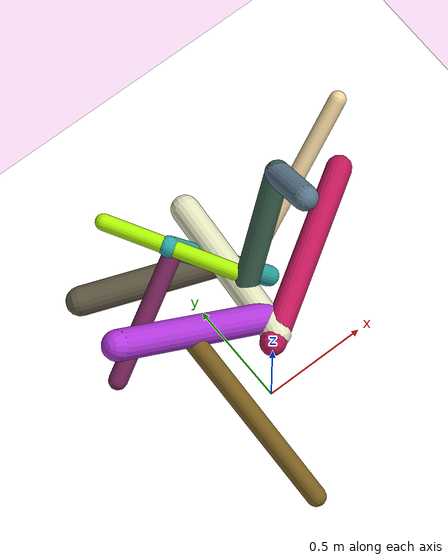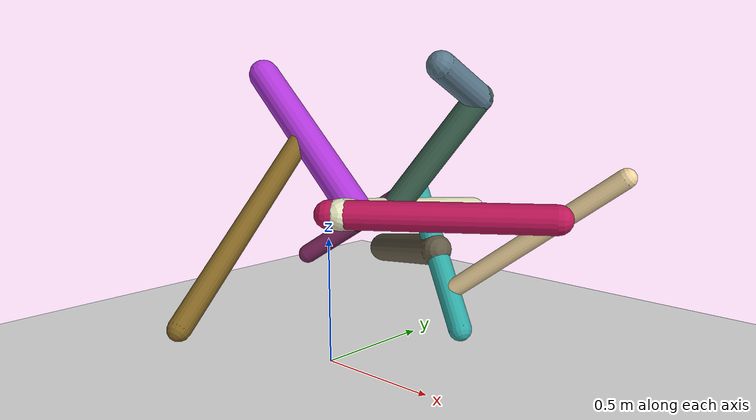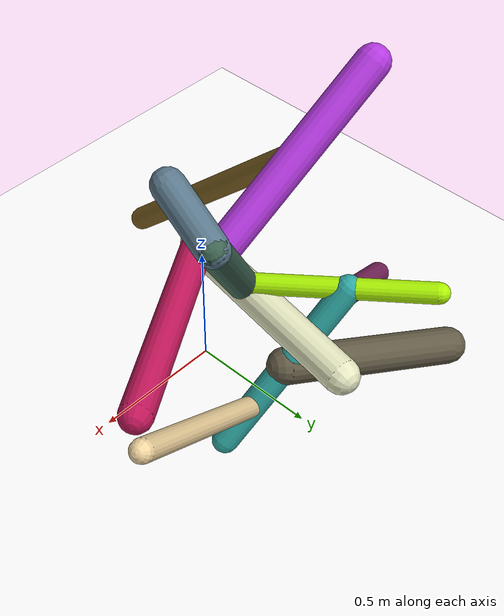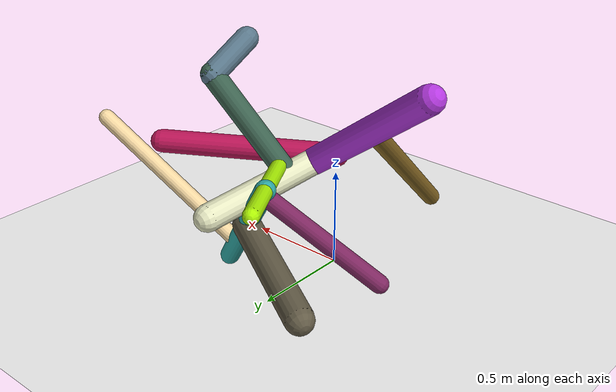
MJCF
<mujoco model="morphology">
  <option timestep="0.01"/>
  <default>
    <default class="/"/>
    <default class="0/"/>
    <default class="0/1/"/>
    <default class="0/1/2/"/>
    <default class="0/1/2/3/"/>
    <default class="0/1/2/4/"/>
    <default class="0/1/2/4/5/"/>
    <default class="0/1/2/4/5/6/"/>
    <default class="0/1/2/4/5/7/"/>
    <default class="0/1/2/4/5/8/"/>
    <default class="0/1/9/"/>
    <default class="0/1/9/10/"/>
  </default>
  <asset>
    <texture name="texplane" type="2d" builtin="checker" rgb1="0.10000000000000001 0.20000000000000001 0.29999999999999999" rgb2="0.20000000000000001 0.29999999999999999 0.40000000000000002" width="300" height="300"/>
    <material name="MatPlane" class="/" texture="texplane" texrepeat="20 20" specular="1" shininess="1" reflectance="0.5"/>
  </asset>
  <worldbody>
    <light name="//unnamed_light_0" class="/" directional="true" pos="0 0 1.5" dir="0 0 -1.3" cutoff="100" exponent="1" diffuse="1 1 1" specular="0.10000000000000001 0.10000000000000001 0.10000000000000001"/>
    <geom name="ground" class="/" type="plane" size="15 15 0.5" material="MatPlane" rgba="1 1 1 1"/>
    <site name="body" class="/" size="9.9999999999999995e-07 9.9999999999999995e-07 9.9999999999999995e-07" pos="0 0 0.59658963084220884"/>
    <body pos="0 0 0.59658963084220884" name="0/">
      <freejoint name="0/"/>
      <geom name="0/geom" class="0/" type="capsule" contype="1" conaffinity="1" condim="3" size="0.058182297204527091" rgba="0.75068122977832163 0.085004339676600371 0.35008055328423993 1" friction="0.59999999999999998 0.10000000000000001 0.10000000000000001" fromto="0 0 0 0.73813103280961156 0.46295631542932991 0.010705023125818558"/>
      <site name="0/end0" class="0/" size="0.0050000000000000001" pos="0.73813103280961156 0.46295631542932991 0.010705023125818558"/>
      <site name="0/attach1" class="0/" size="9.9999999999999995e-07 9.9999999999999995e-07 9.9999999999999995e-07" pos="0.038713006733226793 0.024280825706766221 0.00056144995119864578"/>
      <body pos="0.038713006733226793 0.024280825706766221 0.00056144995119864578" name="0/1/">
        <joint name="0/1/joint/" class="0/" type="hinge" axis="0 1 0" limited="true" range="-47.375339932279793 47.375339932279793"/>
        <geom name="0/1/geom" class="0/1/" type="capsule" contype="1" conaffinity="1" condim="3" size="0.064078236780183984" rgba="0.89514414117148688 0.90355292339703286 0.75397004638326637 1" friction="0.59999999999999998 0.10000000000000001 0.10000000000000001" fromto="0 0 0 0.074839547727191147 0.733202792200772 -0.079982275386592638"/>
        <site name="0/1/end1" class="0/1/" size="0.0050000000000000001" pos="0.074839547727191147 0.733202792200772 -0.079982275386592638"/>
        <site name="0/1/attach2" class="0/1/" size="9.9999999999999995e-07 9.9999999999999995e-07 9.9999999999999995e-07" pos="0.0258041788107711 0.25280345123773845 -0.027577357138652413"/>
        <body pos="0.0258041788107711 0.25280345123773845 -0.027577357138652413" name="0/1/2/">
          <joint name="0/1/2/joint/" class="0/1/" type="hinge" axis="-6.9388939039072284e-18 0.10844284231514015 0.99410268581802641" limited="true" range="-53.951614861478134 53.951614861478134"/>
          <geom name="0/1/2/geom" class="0/1/2/" type="capsule" contype="1" conaffinity="1" condim="3" size="0.054621113394557094" rgba="0.24256582437907703 0.39522766856129465 0.32018933850388809 1" friction="0.59999999999999998 0.10000000000000001 0.10000000000000001" fromto="0 0 0 0.3123591641568062 0.17173194294457006 0.47266865602109287"/>
          <site name="0/1/2/end2" class="0/1/2/" size="0.0050000000000000001" pos="0.3123591641568062 0.17173194294457006 0.47266865602109287"/>
          <site name="0/1/2/attach3" class="0/1/2/" size="9.9999999999999995e-07 9.9999999999999995e-07 9.9999999999999995e-07" pos="0.31028531835911438 0.17059176327618594 0.46953046761981426"/>
          <body pos="0.31028531835911438 0.17059176327618594 0.46953046761981426" name="0/1/2/3/">
            <geom name="0/1/2/3/geom" class="0/1/2/3/" type="capsule" contype="1" conaffinity="1" condim="3" size="0.056708418764960924" rgba="0.35276027307176461 0.46890046608693903 0.54320803169209231 1" friction="0.59999999999999998 0.10000000000000001 0.10000000000000001" fromto="0 0 0 -0.018735288294811747 -0.2060568968701928 0.12495999301852323"/>
            <site name="0/1/2/3/end3" class="0/1/2/3/" size="0.0050000000000000001" pos="-0.018735288294811747 -0.2060568968701928 0.12495999301852323"/>
          </body>
          <site name="0/1/2/attach4" class="0/1/2/" size="9.9999999999999995e-07 9.9999999999999995e-07 9.9999999999999995e-07" pos="0.035654218505205108 0.019602332573137989 0.053952736068526408"/>
          <body pos="0.035654218505205108 0.019602332573137989 0.053952736068526408" name="0/1/2/4/">
            <geom name="0/1/2/4/geom" class="0/1/2/4/" type="capsule" contype="1" conaffinity="1" condim="3" size="0.037630370401179003" rgba="0.67839258346457421 0.95852397232677111 0.015169022560943768 1" friction="0.59999999999999998 0.10000000000000001 0.10000000000000001" fromto="0 0 0 -0.3496331701250015 0.5591519182247886 0.076249748635715209"/>
            <site name="0/1/2/4/end4" class="0/1/2/4/" size="0.0050000000000000001" pos="-0.3496331701250015 0.5591519182247886 0.076249748635715209"/>
            <site name="0/1/2/4/attach5" class="0/1/2/4/" size="9.9999999999999995e-07 9.9999999999999995e-07 9.9999999999999995e-07" pos="-0.19184429495597705 0.30680757631424188 0.041838362368076802"/>
            <body pos="-0.19184429495597705 0.30680757631424188 0.041838362368076802" name="0/1/2/4/5/">
              <geom name="0/1/2/4/5/geom" class="0/1/2/4/5/" type="capsule" contype="1" conaffinity="1" condim="3" size="0.048075694331462006" rgba="0.18215123892844487 0.65730795003474041 0.64123595357521546 1" friction="0.59999999999999998 0.10000000000000001 0.10000000000000001" fromto="0 0 0 0.41235913437749372 -0.1792419898011588 -0.5653648352629348"/>
              <site name="0/1/2/4/5/end5" class="0/1/2/4/5/" size="0.0050000000000000001" pos="0.41235913437749372 -0.1792419898011588 -0.5653648352629348"/>
              <site name="0/1/2/4/5/attach6" class="0/1/2/4/5/" size="9.9999999999999995e-07 9.9999999999999995e-07 9.9999999999999995e-07" pos="0.3160857347282745 -0.13739440045625773 -0.43336922707772602"/>
              <body pos="0.3160857347282745 -0.13739440045625773 -0.43336922707772602" name="0/1/2/4/5/6/">
                <geom name="0/1/2/4/5/6/geom" class="0/1/2/4/5/6/" type="capsule" contype="1" conaffinity="1" condim="3" size="0.039010963967621673" rgba="0.94497922604097184 0.83555926065302544 0.62536181979920924 1" friction="0.59999999999999998 0.10000000000000001 0.10000000000000001" fromto="0 0 0 0.6692972745732666 0.20550666168559628 0.52280192436474238"/>
                <site name="0/1/2/4/5/6/end6" class="0/1/2/4/5/6/" size="0.0050000000000000001" pos="0.6692972745732666 0.20550666168559628 0.52280192436474238"/>
              </body>
              <site name="0/1/2/4/5/attach7" class="0/1/2/4/5/" size="9.9999999999999995e-07 9.9999999999999995e-07 9.9999999999999995e-07" pos="0.20445072917602394 -0.088869513146908191 -0.28031209492784903"/>
              <body pos="0.20445072917602394 -0.088869513146908191 -0.28031209492784903" name="0/1/2/4/5/7/">
                <geom name="0/1/2/4/5/7/geom" class="0/1/2/4/5/7/" type="capsule" contype="1" conaffinity="1" condim="3" size="0.067012954515899698" rgba="0.38444019896578474 0.35390571888794331 0.27362726570980522 1" friction="0.59999999999999998 0.10000000000000001 0.10000000000000001" fromto="0 0 0 -0.56482048569015464 0.27451003774246674 -0.12783457898819439"/>
                <site name="0/1/2/4/5/7/end7" class="0/1/2/4/5/7/" size="0.0050000000000000001" pos="-0.56482048569015464 0.27451003774246674 -0.12783457898819439"/>
              </body>
              <site name="0/1/2/4/5/attach8" class="0/1/2/4/5/" size="9.9999999999999995e-07 9.9999999999999995e-07 9.9999999999999995e-07" pos="0.023642803462980921 -0.010276923157237387 -0.032415456747868526"/>
              <body pos="0.023642803462980921 -0.010276923157237387 -0.032415456747868526" name="0/1/2/4/5/8/">
                <joint name="0/1/2/4/5/8/joint/" class="0/1/2/4/5/" type="hinge" axis="0.82105488479531052 0.17251816526731517 0.54415655725770551" limited="true" range="-40.674287698406893 40.674287698406893"/>
                <geom name="0/1/2/4/5/8/geom" class="0/1/2/4/5/8/" type="capsule" contype="1" conaffinity="1" condim="3" size="0.042842004922831599" rgba="0.48902390733157952 0.15116044764607017 0.37412789667100521 1" friction="0.59999999999999998 0.10000000000000001 0.10000000000000001" fromto="0 0 0 -0.48793239095797236 -0.2143758267652438 -0.35271057877167478"/>
                <site name="0/1/2/4/5/8/end8" class="0/1/2/4/5/8/" size="0.0050000000000000001" pos="-0.48793239095797236 -0.2143758267652438 -0.35271057877167478"/>
              </body>
            </body>
          </body>
        </body>
        <site name="0/1/attach9" class="0/1/" size="9.9999999999999995e-07 9.9999999999999995e-07 9.9999999999999995e-07" pos="0.0091860865335960436 0.089996058238917362 -0.009817324197807847"/>
        <body pos="0.0091860865335960436 0.089996058238917362 -0.009817324197807847" name="0/1/9/">
          <joint name="0/1/9/joint/" class="0/1/" type="hinge" axis="-0.99489132086880649 0.10035642467977035 -0.010947496764787679" limited="true" range="-38.955895228171933 38.955895228171933"/>
          <geom name="0/1/9/geom" class="0/1/9/" type="capsule" contype="1" conaffinity="1" condim="3" size="0.066573640371495296" rgba="0.70741156265407401 0.22138584068486522 0.87801754873223203 1" friction="0.59999999999999998 0.10000000000000001 0.10000000000000001" fromto="0 0 0 -0.68979917134112423 0.1012505220715787 0.52595501014266999"/>
          <site name="0/1/9/end9" class="0/1/9/" size="0.0050000000000000001" pos="-0.68979917134112423 0.1012505220715787 0.52595501014266999"/>
          <site name="0/1/9/attach10" class="0/1/9/" size="9.9999999999999995e-07 9.9999999999999995e-07 9.9999999999999995e-07" pos="-0.3743506085939477 0.054948159018889678 0.28543319029673969"/>
          <body pos="-0.3743506085939477 0.054948159018889678 0.28543319029673969" name="0/1/9/10/">
            <joint name="0/1/9/10/joint/" class="0/1/9/" type="hinge" axis="-5.5511151231257827e-17 -0.98196996016116611 0.18903702637599268" limited="true" range="-41.659424739311895 41.659424739311895"/>
            <geom name="0/1/9/10/geom" class="0/1/9/10/" type="capsule" contype="1" conaffinity="1" condim="3" size="0.045086718890829908" rgba="0.49928379482011198 0.38458879230660825 0.12989362749601618 1" friction="0.59999999999999998 0.10000000000000001 0.10000000000000001" fromto="0 0 0 0.12544169300924857 -0.72720848246359404 -0.64691267094869032"/>
            <site name="0/1/9/10/end10" class="0/1/9/10/" size="0.0050000000000000001" pos="0.12544169300924857 -0.72720848246359404 -0.64691267094869032"/>
          </body>
        </body>
      </body>
      <camera name="0/iso" class="0/" mode="trackcom" pos="-2.2999999999999998 -2.2999999999999998 1" xyaxes="0.45000000000000001 -0.45000000000000001 0 0.29999999999999999 0.14999999999999999 0.93999999999999995"/>
    </body>
  </worldbody>
  <actuator>
    <motor name="0/1/motor" class="0/1/" ctrllimited="true" ctrlrange="-1 1" gear="77" joint="0/1/joint/"/>
    <motor name="0/1/2/motor" class="0/1/2/" ctrllimited="true" ctrlrange="-1 1" gear="73" joint="0/1/2/joint/"/>
    <motor name="0/1/2/4/5/8/motor" class="0/1/2/4/5/8/" ctrllimited="true" ctrlrange="-1 1" gear="65" joint="0/1/2/4/5/8/joint/"/>
    <motor name="0/1/9/motor" class="0/1/9/" ctrllimited="true" ctrlrange="-1 1" gear="71" joint="0/1/9/joint/"/>
    <motor name="0/1/9/10/motor" class="0/1/9/10/" ctrllimited="true" ctrlrange="-1 1" gear="99" joint="0/1/9/10/joint/"/>
  </actuator>
  <sensor>
    <subtreelinvel name="velocity" body="0/"/>
  </sensor>
</mujoco>
